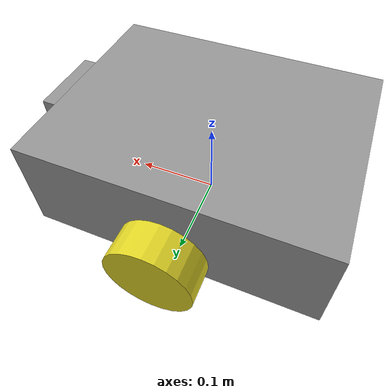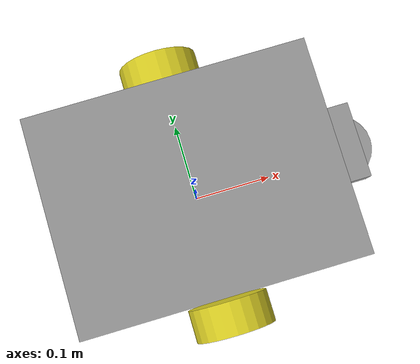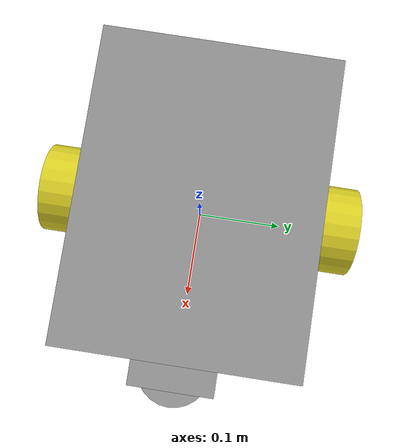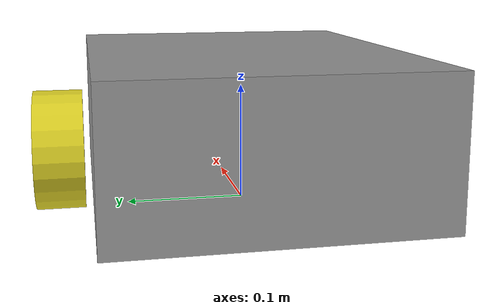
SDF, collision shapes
<?xml version="1.0" ?>
<sdf version="1.8">

    <model name='neobot'>

    <!-- ********************* PLUGINS ********************* -->

        <plugin filename="gz-sim-imu-system"
                name="gz::sim::systems::Imu">
        </plugin>

        <plugin filename="libgz_ros2_control-system.so" name="gz_ros2_control::GazeboSimROS2ControlPlugin">
            <parameters>/home/akarsh/neobot_ws/src/neobot/config/diff_controller.yaml</parameters>
        </plugin>

        <ros2_control name="GazeboSimSystem" type="system">
            <hardware>
                <plugin>gz_ros2_control/GazeboSimSystem</plugin>
            </hardware>
            <joint name="left_wheel_joint">
                <command_interface name="velocity">
                    <param name="min">-1</param>
                    <param name="max">1</param>
                </command_interface>
                <state_interface name="position"/>
                <state_interface name="velocity"/>
            </joint>

            <joint name="right_wheel_joint">
                <command_interface name="velocity">
                    <param name="min">-1</param>
                    <param name="max">1</param>
                </command_interface>
                <state_interface name="position"/>
                <state_interface name="velocity"/>
            </joint>
        </ros2_control>

        <plugin filename="gz-sim-sensors-system"
                name="gz::sim::systems::Sensors">
            <render_engine>ogre2</render_engine>
        </plugin>

        <plugin filename="libgz-sim-odometry-publisher-system"
            name="gz::sim::systems::OdometryPublisher">
            <odom_frame>odom</odom_frame>
            <robot_base_frame>base_footprint</robot_base_frame>
            <odom_topic>odom</odom_topic>
            <tf_topic>tf</tf_topic>
            <frame_id>odom</frame_id>
            <child_frame_id>base_footprint</child_frame_id>
            <odom_publish_frequency>10</odom_publish_frequency>
        </plugin>

    <!-- ********************* LINKS ********************* -->

        <link name="base_footprint">
            <inertial>
                <pose>0 0 0 0 0 0</pose>
                <mass>0</mass>
                <inertia>
                <ixx>0</ixx>
                <ixy>0</ixy>
                <ixz>0</ixz>
                <iyy>0</iyy>
                <iyz>0</iyz>
                <izz>0</izz>
                </inertia>
            </inertial>
        </link>

        <link name='base_link'>
            <pose relative_to='base_footprint_joint'>0 0 0 0 0 0</pose>
            <inertial>
                <pose>0.019736266638338499 -0.00103592208239938 0.024943774276299499 0 0 0</pose>
                <mass>2.8860000000000001</mass>
                <inertia>
                <ixx>0.0230886</ixx>
                <ixy>-0.00059632880</ixy>
                <ixz>0.00089059654</ixz>
                <iyy>0.040993868</iyy>
                <iyz>-0.00001729413</iyz>
                <izz>0.056762850</izz>
                </inertia>
            </inertial>
            <collision name='base_link_collision_frame'>
                <pose>0 0 0.037 0 0 0</pose>
                <geometry>
                    <box>
                        <size>0.34 0.26 0.120</size>
                    </box>
                </geometry>
            </collision>
            <collision name='base_link_collision_lidar'>
                <pose>0.18 0 0.026 0 0 0</pose>
                <geometry>
                    <cylinder>
                        <length>0.0526</length>
                        <radius>0.04</radius>
                    </cylinder>
                </geometry>
            </collision>
            <collision name='base_link_collision_camera'>
                <pose>0.184025 0 0.072 0 0 0</pose>
                <geometry>
                    <box>
                        <size>0.02805 0.09 0.025</size>
                    </box>
                </geometry>
            </collision>
            <visual name='base_link_visual'>
                <pose>0 0 0 0 0 0</pose>
                <geometry>
                <mesh>
                    <scale>1 1 1</scale>
                    <uri>../meshes/base_link.STL</uri>
                </mesh>
                </geometry>
                <material>
                <script>
                    <name>Gazebo/Grey</name>
                    <uri>file://media/materials/scripts/gazebo.material</uri>
                </script>
                </material>
            </visual>
        </link>

        <link name='camera_link'>
            <pose relative_to='camera_joint'>0 0 0 0 0 0</pose>
            <inertial>
                <pose>0 0 0 0 0 0</pose>
                <mass>0</mass>
                <inertia>
                <ixx>0</ixx>
                <ixy>0</ixy>
                <ixz>0</ixz>
                <iyy>0</iyy>
                <iyz>0</iyz>
                <izz>0</izz>
                </inertia>
            </inertial>

            <sensor name="depth_camera" type="rgbd_camera">
                <update_rate>30</update_rate>
                <topic>depth_camera</topic>
                <gz_frame_id>camera_link</gz_frame_id>
                <camera name="depth_camera">

                <horizontal_fov>1.0472</horizontal_fov>

                <image>
                    <width>640</width>
                    <height>480</height>
                    <format>R8G8B8</format>
                </image>
                <clip>
                    <near>0.01</near>
                    <far>100</far>
                </clip>
                <depth_camera>
                    <clip>
                    <near>0.1</near>
                    <far>10</far>
                    </clip>
                </depth_camera>
                <noise>
                    <type>gaussian</type>
                    <mean>0</mean>
                    <stddev>0.007</stddev>
                </noise>
                </camera>
            </sensor>

        </link>

        <link name='imu_link'>
            <pose relative_to='imu_joint'>0 0 0 0 0 0</pose>
            <inertial>
                <pose>0 0 0 0 0 0</pose>
                <mass>0</mass>
                <inertia>
                <ixx>0</ixx>
                <ixy>0</ixy>
                <ixz>0</ixz>
                <iyy>0</iyy>
                <iyz>0</iyz>
                <izz>0</izz>
                </inertia>
            </inertial>

            <sensor name="imu_sensor" type="imu">
                <gz_frame_id>imu</gz_frame_id>
                <always_on>1</always_on>
                <update_rate>1</update_rate>
                <visualize>true</visualize>
                <topic>imu</topic>
            </sensor>

        </link>

        <link name='lidar_link'>
            <pose relative_to='lidar_joint'>0 0 0 0 0 0</pose>
            <inertial>
                <pose>0 0 0 0 0 0</pose>
                <mass>0</mass>
                <inertia>
                <ixx>0</ixx>
                <ixy>0</ixy>
                <ixz>0</ixz>
                <iyy>0</iyy>
                <iyz>0</iyz>
                <izz>0</izz>
                </inertia>
            </inertial>

            <sensor name='gpu_lidar' type='gpu_lidar'>

                <topic>scan</topic>
                <gz_frame_id>lidar_link</gz_frame_id>
                <update_rate>10</update_rate>
                <ray>
                    <scan>
                        <horizontal>
                            <samples>180</samples>
                            <resolution>1</resolution>
                            <min_angle>-1.57</min_angle>
                            <max_angle>1.57</max_angle>
                        </horizontal>
                        <vertical>
                            <samples>1</samples>
                            <resolution>0.01</resolution>
                            <min_angle>0</min_angle>
                            <max_angle>0</max_angle>
                        </vertical>
                    </scan>
                    <range>
                        <min>0.08</min>
                        <max>20.0</max>
                        <resolution>0.01</resolution>
                    </range>
                </ray>
                <always_on>1</always_on>
                <visualize>true</visualize>
            </sensor>

        </link>

        <link name='left_wheel_link'>
            <pose relative_to='left_wheel_joint'>0 0 0 0 0 0</pose>
            <inertial>
                <pose>0 0.015369 0 0 0 0</pose>
                <mass>0.132</mass>
                <inertia>
                <ixx>0.000103824895</ixx>
                <ixy>0</ixy>
                <ixz>0</ixz>
                <iyy>0.000183869513</iyy>
                <iyz>0</iyz>
                <izz>0.000103824895</izz>
                </inertia>
            </inertial>
            <collision name='left_wheel_link_collision'>
                <pose>0 0.02 0 1.57079632679 0 0</pose>
                <geometry>
                    <cylinder>
                        <length>0.04</length>
                        <radius>0.05</radius>
                    </cylinder>
                </geometry>
                <surface>
                    <friction>
                    <ode>
                        <mu>5.00</mu>
                        <mu2>5.00</mu2>
                        <slip1>0</slip1>
                        <slip2>0</slip2>
                    </ode>
                    </friction>
                </surface>
            </collision>
            <visual name='left_wheel_link_visual'>
                <pose>0 0 0 0 0 0</pose>
                <geometry>
                <mesh>
                    <scale>1 1 1</scale>
                    <uri>../meshes/left_wheel_link.STL</uri>
                </mesh>
                </geometry>
                <material>
                    <script>
                        <name>Gazebo/Yellow</name>
                        <uri>file://media/materials/scripts/gazebo.material</uri>
                    </script>
                </material>
            </visual>
        </link>

        <link name='right_wheel_link'>
            <pose relative_to='right_wheel_joint'>0 0 0 0 0 0</pose>
            <inertial>
                <pose>0 -0.015369 0 0 0 0</pose>
                <mass>0.132</mass>
                <inertia>
                <ixx>0.000103824895</ixx>
                <ixy>0</ixy>
                <ixz>0</ixz>
                <iyy>0.000183869513</iyy>
                <iyz>0</iyz>
                <izz>0.000103824895</izz>
                </inertia>
            </inertial>
            <collision name='right_wheel_link_collision'>
                <pose>0 -0.02 0 1.57079632679 0 0</pose>
                <geometry>
                    <cylinder>
                        <length>0.04</length>
                        <radius>0.05</radius>
                    </cylinder>
                </geometry>
                <surface>
                    <friction>
                    <ode>
                        <mu>5.00</mu>
                        <mu2>5.00</mu2>
                        <slip1>0</slip1>
                        <slip2>0</slip2>
                    </ode>
                    </friction>
                </surface>
            </collision>
            <visual name='right_wheel_link_visual'>
                <pose>0 0 0 0 0 0</pose>
                <geometry>
                <mesh>
                    <scale>1 1 1</scale>
                    <uri>../meshes/right_wheel_link.STL</uri>
                </mesh>
                </geometry>
                <material name="yellow">
                    <script>
                        <name>Gazebo/Yellow</name>
                        <uri>file://media/materials/scripts/gazebo.material</uri>
                    </script>
                </material>
            </visual>
        </link>

        <link name='front_castor_link'>
            <pose relative_to='front_castor_joint'/>
            <inertial>
                <pose>0 0 0 0 0 0</pose>
                <mass>0.0138</mass>
                <inertia>
                <ixx>0.000000312122139</ixx>
                <ixy>0</ixy>
                <ixz>0</ixz>
                <iyy>0.000000312122139</iyy>
                <iyz>0</iyz>
                <izz>0.000000312122139</izz>
                </inertia>
            </inertial>
            <collision name='front_castor_link_collision'>
                <pose>0 0 0 0 0 0</pose>
                <geometry>
                <sphere>
                    <radius>0.0075</radius>
                </sphere>
                </geometry>
                <surface>
                    <friction>
                    <ode>
                        <mu>0.00</mu>
                        <mu2>0.00</mu2>
                    </ode>
                    </friction>
                </surface>
            </collision>
            <visual name='front_castor_link_visual'>
                <pose>0 0 0 0 0 0</pose>
                <geometry>
                <mesh>
                    <scale>1 1 1</scale>
                    <uri>../meshes/front_castor_link.STL</uri>
                </mesh>
                </geometry>
                <material>
                <diffuse>0.808824956 0.774512529 0.735300064 1</diffuse>
                <ambient>0.808824956 0.774512529 0.735300064 1</ambient>
                </material>
            </visual>
        </link>

        <link name='rear_castor_link'>
            <pose relative_to='rear_castor_joint'/>
            <inertial>
                <pose>0 0 0 0 0 0</pose>
                <mass>0.0138</mass>
                <inertia>
                <ixx>0.000000312122139</ixx>
                <ixy>0</ixy>
                <ixz>0</ixz>
                <iyy>0.000000312122139</iyy>
                <iyz>0</iyz>
                <izz>0.000000312122139</izz>
                </inertia>
            </inertial>
            <collision name='rear_castor_link_collision'>
                <pose>0 0 0 0 0 0</pose>
                <geometry>
                <sphere>
                    <radius>0.0075</radius>
                </sphere>
                </geometry>
                <surface>
                    <friction>
                    <ode>
                        <mu>0.00</mu>
                        <mu2>0.00</mu2>
                    </ode>
                    </friction>
                </surface>
            </collision>
            <visual name='rear_castor_link_visual'>
                <pose>0 0 0 0 0 0</pose>
                <geometry>
                <mesh>
                    <scale>1 1 1</scale>
                    <uri>../meshes/rear_castor_link.STL</uri>
                </mesh>
                </geometry>
                <material>
                <diffuse>0.808824956 0.774512529 0.735300064 1</diffuse>
                <ambient>0.808824956 0.774512529 0.735300064 1</ambient>
                </material>
            </visual>
        </link>

    <!-- ********************* JOINTS ********************* -->

        <joint name='base_footprint_joint' type='fixed'>
            <pose relative_to='base_footprint'>0 0 0.0345 0 0 0</pose>
                <parent>base_footprint</parent>
                <child>base_link</child>
        </joint>

        <joint name='camera_joint' type='fixed'>
            <pose relative_to='base_link'>0.19905 0 0.072 0 0 0</pose>
                <parent>base_link</parent>
                <child>camera_link</child>
        </joint>

        <joint name='lidar_joint' type='fixed'>
            <pose relative_to='base_link'>0.18 0 0.0376 0 0 0</pose>
                <parent>base_link</parent>
                <child>lidar_link</child>
        </joint>

        <joint name='imu_joint' type='fixed'>
            <pose relative_to='base_link'>0 0 0 0 0 0</pose>
                <parent>base_link</parent>
                <child>imu_link</child>
        </joint>

        <joint name='left_wheel_joint' type='revolute'>
            <pose relative_to='base_link'>0 0.136 0.0155 0 0 0</pose>
                <parent>base_link</parent>
                <child>left_wheel_link</child>
                    <axis>
                        <xyz>0 1 0</xyz>
                        <limit>
                        <lower>-inf</lower>
                        <upper>inf</upper>
                        </limit>

                    </axis>
        </joint>

        <joint name='right_wheel_joint' type='revolute'>
            <pose relative_to='base_link'>0 -0.136 0.0155 0 0 0</pose>
                <parent>base_link</parent>
                <child>right_wheel_link</child>
                    <axis>
                        <xyz>0 1 0</xyz>
                        <limit>
                            <!-- 9.11 rad/s joint_velocity ~= 87rpm -->
                            <lower>-inf</lower>
                            <upper>inf</upper>
                        </limit>
                    </axis>
        </joint>

        <joint name='front_castor_joint' type='fixed'>
            <pose relative_to='base_link'>0.12 0 -0.0265 0 0 0</pose>
                <parent>base_link</parent>
                <child>front_castor_link</child>
        </joint>

        <joint name='rear_castor_joint' type='fixed'>
            <pose relative_to='base_link'>-0.12 0 -0.0265 0 0 0</pose>
                <parent>base_link</parent>
                <child>rear_castor_link</child>
        </joint>

    </model>

</sdf>
